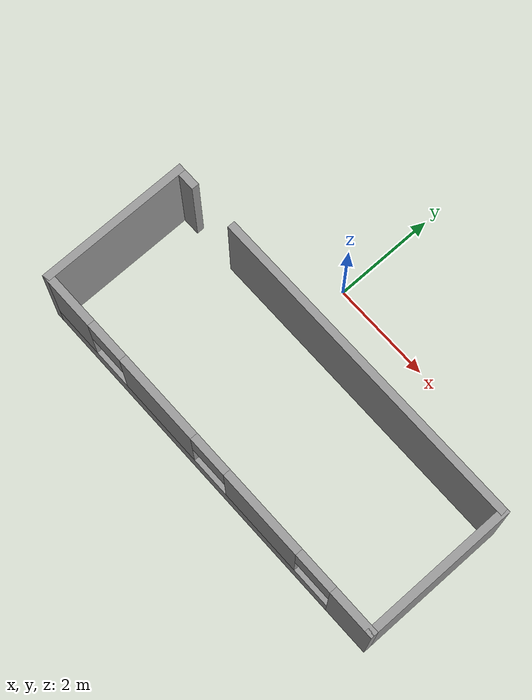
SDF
<?xml version='1.0'?>
<sdf version='1.7'>
  <model name='library'>
    <pose>0.925 -2.0225 0 0 -0 0</pose>
    <link name='Wall_0'>
      <pose>0 0.9025 0 0 -0 0</pose>
      <visual name='Wall_0_Visual_0'>
        <pose>-3.7525 0 1 0 -0 0</pose>
        <geometry>
          <box>
            <size>0.495 0.15 2</size>
          </box>
        </geometry>
        <material>
          <script>
            <uri>file://media/materials/scripts/gazebo.material</uri>
            <name>Gazebo/Grey</name>
          </script>
          <ambient>1 1 1 1</ambient>
        </material>
        <meta>
          <layer>0</layer>
        </meta>
      </visual>
      <collision name='Wall_0_Collision_0'>
        <geometry>
          <box>
            <size>0.495 0.15 2</size>
          </box>
        </geometry>
        <pose>-3.7525 0 1 0 -0 0</pose>
      </collision>
      <visual name='Wall_0_Visual_1'>
        <pose>0.6975 0 1 0 -0 0</pose>
        <geometry>
          <box>
            <size>6.605 0.15 2</size>
          </box>
        </geometry>
        <material>
          <script>
            <uri>file://media/materials/scripts/gazebo.material</uri>
            <name>Gazebo/Grey</name>
          </script>
          <ambient>1 1 1 1</ambient>
        </material>
        <meta>
          <layer>0</layer>
        </meta>
      </visual>
      <collision name='Wall_0_Collision_1'>
        <geometry>
          <box>
            <size>6.605 0.15 2</size>
          </box>
        </geometry>
        <pose>0.6975 0 1 0 -0 0</pose>
      </collision>
    </link>
    <link name='Wall_1'>
      <collision name='Wall_1_Collision'>
        <geometry>
          <box>
            <size>3 0.15 2</size>
          </box>
        </geometry>
        <pose>0 0 1 0 -0 0</pose>
      </collision>
      <visual name='Wall_1_Visual'>
        <pose>0 0 1 0 -0 0</pose>
        <geometry>
          <box>
            <size>3 0.15 2</size>
          </box>
        </geometry>
        <material>
          <script>
            <uri>file://media/materials/scripts/gazebo.material</uri>
            <name>Gazebo/Grey</name>
          </script>
          <ambient>1 1 1 1</ambient>
        </material>
        <meta>
          <layer>0</layer>
        </meta>
      </visual>
      <pose>3.925 -0.5225 0 0 -0 -1.5708</pose>
    </link>
    <link name='Wall_2'>
      <pose>0 -1.9475 0 0 -0 3.14159</pose>
      <visual name='Wall_2_Visual_0'>
        <pose>-3.5225 0 1 0 -0 0</pose>
        <geometry>
          <box>
            <size>0.955 0.15 2</size>
          </box>
        </geometry>
        <material>
          <script>
            <uri>file://media/materials/scripts/gazebo.material</uri>
            <name>Gazebo/Grey</name>
          </script>
          <ambient>1 1 1 1</ambient>
        </material>
        <meta>
          <layer>0</layer>
        </meta>
      </visual>
      <collision name='Wall_2_Collision_0'>
        <geometry>
          <box>
            <size>0.955 0.15 2</size>
          </box>
        </geometry>
        <pose>-3.5225 0 1 0 -0 0</pose>
      </collision>
      <visual name='Wall_2_Visual_1'>
        <pose>0.4775 0 0.25 0 -0 0</pose>
        <geometry>
          <box>
            <size>7.045 0.15 0.5</size>
          </box>
        </geometry>
        <material>
          <script>
            <uri>file://media/materials/scripts/gazebo.material</uri>
            <name>Gazebo/Grey</name>
          </script>
          <ambient>1 1 1 1</ambient>
        </material>
        <meta>
          <layer>0</layer>
        </meta>
      </visual>
      <collision name='Wall_2_Collision_1'>
        <geometry>
          <box>
            <size>7.045 0.15 0.5</size>
          </box>
        </geometry>
        <pose>0.4775 0 0.25 0 -0 0</pose>
      </collision>
      <visual name='Wall_2_Visual_2'>
        <pose>-1.385 0 1.25 0 -0 0</pose>
        <geometry>
          <box>
            <size>1.72 0.15 1.5</size>
          </box>
        </geometry>
        <material>
          <script>
            <uri>file://media/materials/scripts/gazebo.material</uri>
            <name>Gazebo/Grey</name>
          </script>
          <ambient>1 1 1 1</ambient>
        </material>
        <meta>
          <layer>0</layer>
        </meta>
      </visual>
      <collision name='Wall_2_Collision_2'>
        <geometry>
          <box>
            <size>1.72 0.15 1.5</size>
          </box>
        </geometry>
        <pose>-1.385 0 1.25 0 -0 0</pose>
      </collision>
      <visual name='Wall_2_Visual_3'>
        <pose>1.155 0 1.25 0 -0 0</pose>
        <geometry>
          <box>
            <size>1.76 0.15 1.5</size>
          </box>
        </geometry>
        <material>
          <script>
            <uri>file://media/materials/scripts/gazebo.material</uri>
            <name>Gazebo/Grey</name>
          </script>
          <ambient>1 1 1 1</ambient>
        </material>
        <meta>
          <layer>0</layer>
        </meta>
      </visual>
      <collision name='Wall_2_Collision_3'>
        <geometry>
          <box>
            <size>1.76 0.15 1.5</size>
          </box>
        </geometry>
        <pose>1.155 0 1.25 0 -0 0</pose>
      </collision>
      <visual name='Wall_2_Visual_4'>
        <pose>3.4175 0 1.25 0 -0 0</pose>
        <geometry>
          <box>
            <size>1.165 0.15 1.5</size>
          </box>
        </geometry>
        <material>
          <script>
            <uri>file://media/materials/scripts/gazebo.material</uri>
            <name>Gazebo/Grey</name>
          </script>
          <ambient>1 1 1 1</ambient>
        </material>
        <meta>
          <layer>0</layer>
        </meta>
      </visual>
      <collision name='Wall_2_Collision_4'>
        <geometry>
          <box>
            <size>1.165 0.15 1.5</size>
          </box>
        </geometry>
        <pose>3.4175 0 1.25 0 -0 0</pose>
      </collision>
      <visual name='Wall_2_Visual_5'>
        <pose>-2.645 0 1.65 0 -0 0</pose>
        <geometry>
          <box>
            <size>0.8 0.15 0.7</size>
          </box>
        </geometry>
        <material>
          <script>
            <uri>file://media/materials/scripts/gazebo.material</uri>
            <name>Gazebo/Grey</name>
          </script>
          <ambient>1 1 1 1</ambient>
        </material>
        <meta>
          <layer>0</layer>
        </meta>
      </visual>
      <collision name='Wall_2_Collision_5'>
        <geometry>
          <box>
            <size>0.8 0.15 0.7</size>
          </box>
        </geometry>
        <pose>-2.645 0 1.65 0 -0 0</pose>
      </collision>
      <visual name='Wall_2_Visual_6'>
        <pose>-0.125 0 1.65 0 -0 0</pose>
        <geometry>
          <box>
            <size>0.8 0.15 0.7</size>
          </box>
        </geometry>
        <material>
          <script>
            <uri>file://media/materials/scripts/gazebo.material</uri>
            <name>Gazebo/Grey</name>
          </script>
          <ambient>1 1 1 1</ambient>
        </material>
        <meta>
          <layer>0</layer>
        </meta>
      </visual>
      <collision name='Wall_2_Collision_6'>
        <geometry>
          <box>
            <size>0.8 0.15 0.7</size>
          </box>
        </geometry>
        <pose>-0.125 0 1.65 0 -0 0</pose>
      </collision>
      <visual name='Wall_2_Visual_7'>
        <pose>2.435 0 1.65 0 -0 0</pose>
        <geometry>
          <box>
            <size>0.8 0.15 0.7</size>
          </box>
        </geometry>
        <material>
          <script>
            <uri>file://media/materials/scripts/gazebo.material</uri>
            <name>Gazebo/Grey</name>
          </script>
          <ambient>1 1 1 1</ambient>
        </material>
        <meta>
          <layer>0</layer>
        </meta>
      </visual>
      <collision name='Wall_2_Collision_7'>
        <geometry>
          <box>
            <size>0.8 0.15 0.7</size>
          </box>
        </geometry>
        <pose>2.435 0 1.65 0 -0 0</pose>
      </collision>
    </link>
    <link name='Wall_3'>
      <collision name='Wall_3_Collision'>
        <geometry>
          <box>
            <size>3 0.15 2</size>
          </box>
        </geometry>
        <pose>0 0 1 0 -0 0</pose>
      </collision>
      <visual name='Wall_3_Visual'>
        <pose>0 0 1 0 -0 0</pose>
        <geometry>
          <box>
            <size>3 0.15 2</size>
          </box>
        </geometry>
        <material>
          <script>
            <uri>file://media/materials/scripts/gazebo.material</uri>
            <name>Gazebo/Grey</name>
          </script>
          <ambient>1 1 1 1</ambient>
        </material>
        <meta>
          <layer>0</layer>
        </meta>
      </visual>
      <pose>-3.925 -0.5225 0 0 -0 1.5708</pose>
    </link>
    <static>1</static>
  </model>
</sdf>
